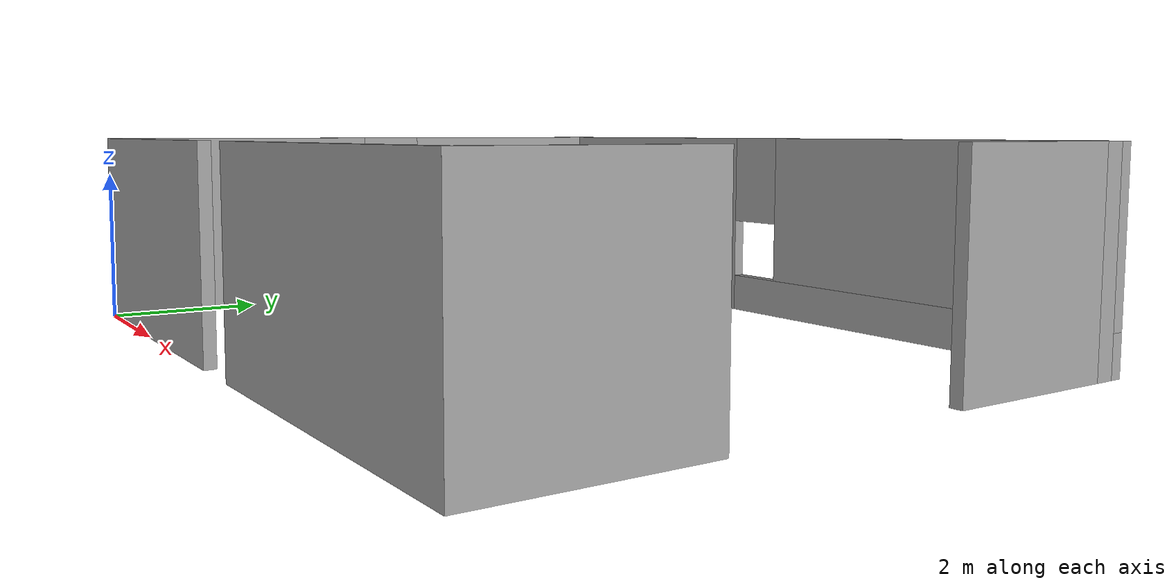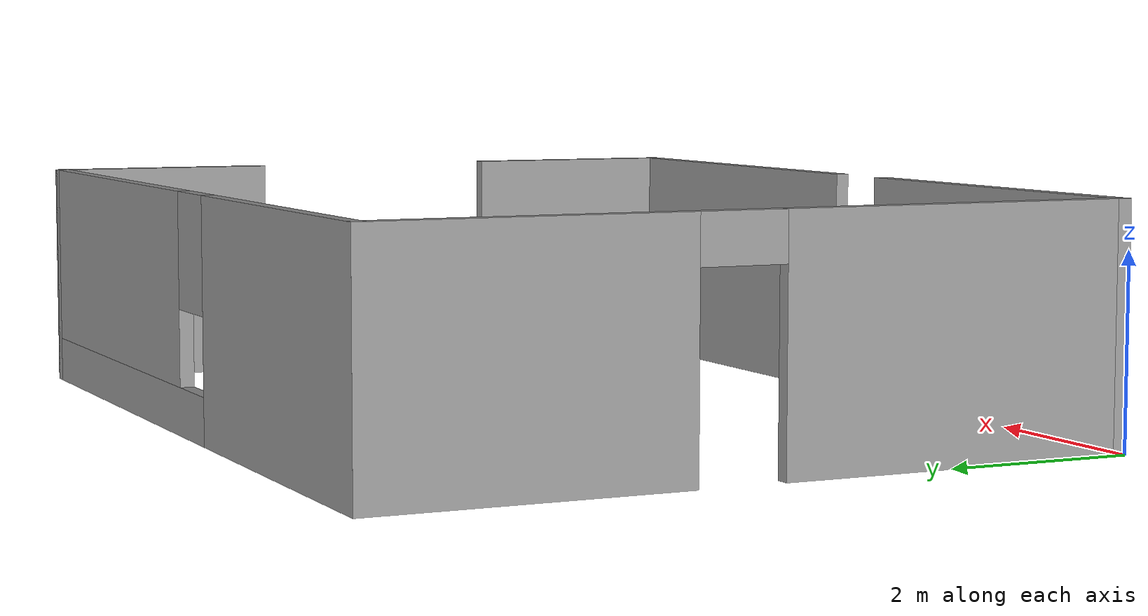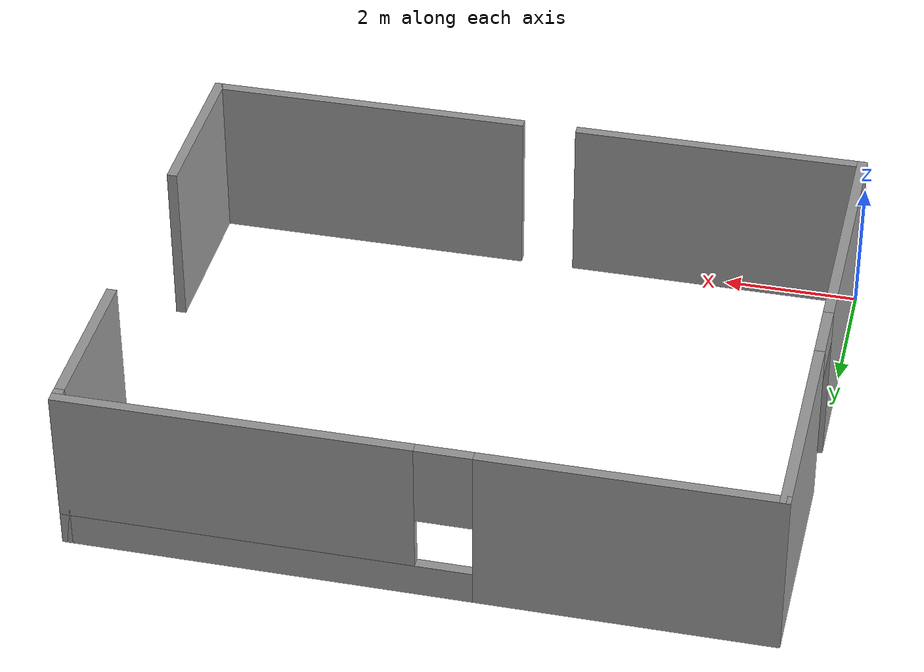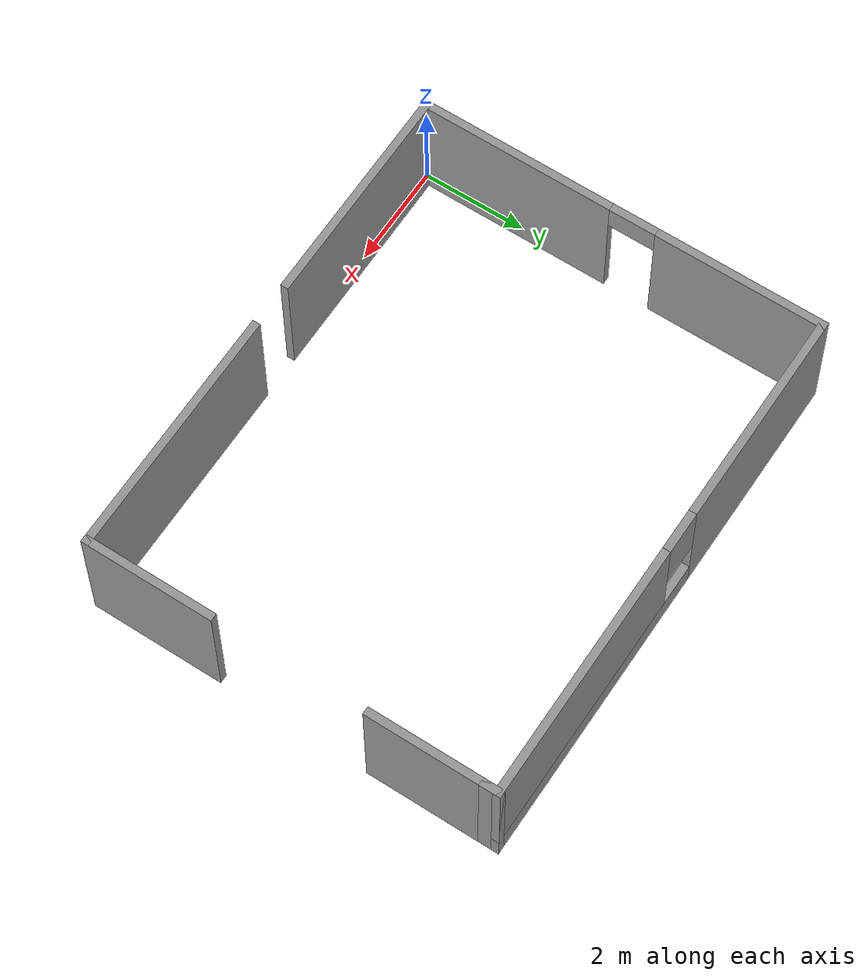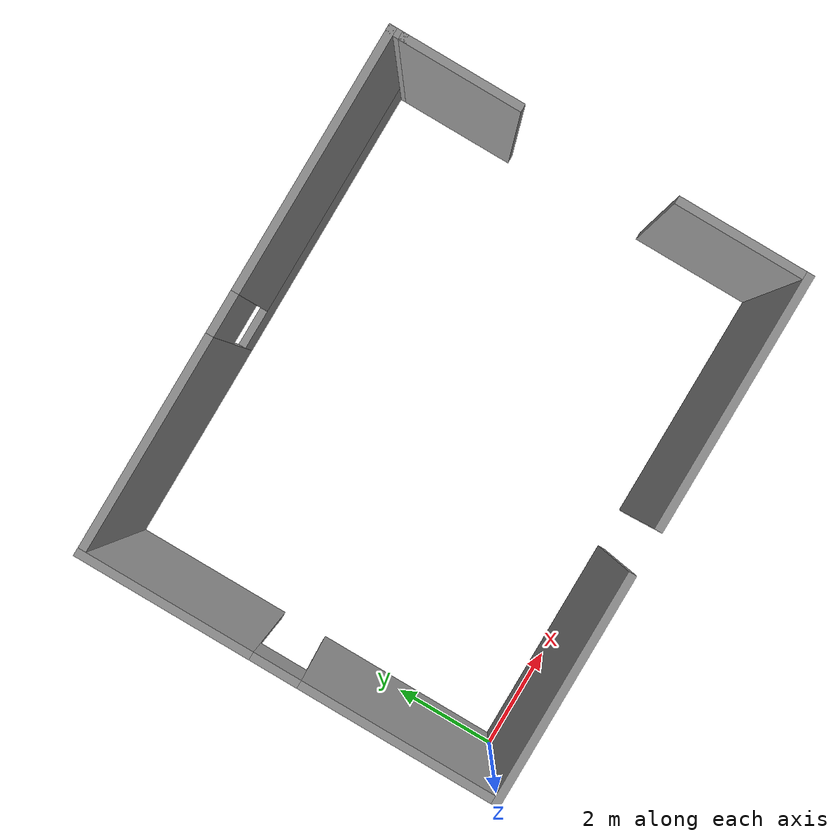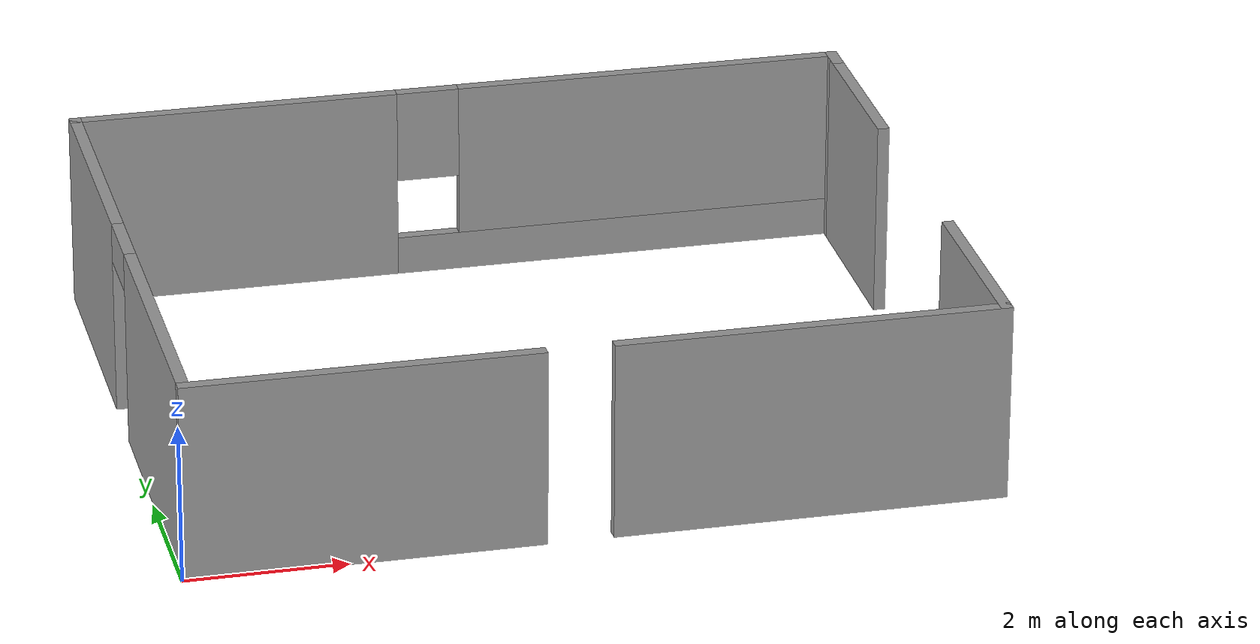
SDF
<?xml version='1.0'?>
<sdf version='1.6'>
  <model name='single_room_2windows_2doors'>
    <pose frame=''>5.00307 3.98307 0 0 -0 0</pose>
    <link name='Wall_2'>
      <pose frame=''>-7.4e-05 -3.92507 0 0 -0 0</pose>
      <visual name='Wall_2_Visual_0'>
        <pose frame=''>-2.81644 0 1.25 0 -0 0</pose>
        <geometry>
          <box>
            <size>4.36712 0.15 2.5</size>
          </box>
        </geometry>
        <material>
          <script>
            <uri>file://media/materials/scripts/gazebo.material</uri>
            <name>Gazebo/Grey</name>
          </script>
          <ambient>1 1 1 1</ambient>
        </material>
        <meta>
          <layer>0</layer>
        </meta>
      </visual>
      <collision name='Wall_2_Collision_0'>
        <geometry>
          <box>
            <size>4.36712 0.15 2.5</size>
          </box>
        </geometry>
        <pose frame=''>-2.81644 0 1.25 0 -0 0</pose>
      </collision>
      <visual name='Wall_2_Visual_1'>
        <pose frame=''>2.58356 0 1.25 0 -0 0</pose>
        <geometry>
          <box>
            <size>4.83288 0.15 2.5</size>
          </box>
        </geometry>
        <material>
          <script>
            <uri>file://media/materials/scripts/gazebo.material</uri>
            <name>Gazebo/Grey</name>
          </script>
          <ambient>1 1 1 1</ambient>
        </material>
        <meta>
          <layer>0</layer>
        </meta>
      </visual>
      <collision name='Wall_2_Collision_1'>
        <geometry>
          <box>
            <size>4.83288 0.15 2.5</size>
          </box>
        </geometry>
        <pose frame=''>2.58356 0 1.25 0 -0 0</pose>
      </collision>
    </link>
    <link name='Wall_3'>
      <pose frame=''>4.925 -0.125 0 0 -0 1.57078</pose>
      <visual name='Wall_3_Visual_0'>
        <pose frame=''>-2.59913 0 1.25 0 -0 0</pose>
        <geometry>
          <box>
            <size>2.55174 0.15 2.5</size>
          </box>
        </geometry>
        <material>
          <script>
            <uri>file://media/materials/scripts/gazebo.material</uri>
            <name>Gazebo/Grey</name>
          </script>
          <ambient>1 1 1 1</ambient>
        </material>
        <meta>
          <layer>0</layer>
        </meta>
      </visual>
      <collision name='Wall_3_Collision_0'>
        <geometry>
          <box>
            <size>2.55174 0.15 2.5</size>
          </box>
        </geometry>
        <pose frame=''>-2.59913 0 1.25 0 -0 0</pose>
      </collision>
      <visual name='Wall_3_Visual_1'>
        <pose frame=''>2.72037 0 1.25 0 -0 0</pose>
        <geometry>
          <box>
            <size>2.30926 0.15 2.5</size>
          </box>
        </geometry>
        <material>
          <script>
            <uri>file://media/materials/scripts/gazebo.material</uri>
            <name>Gazebo/Grey</name>
          </script>
          <ambient>1 1 1 1</ambient>
        </material>
        <meta>
          <layer>0</layer>
        </meta>
      </visual>
      <collision name='Wall_3_Collision_1'>
        <geometry>
          <box>
            <size>2.30926 0.15 2.5</size>
          </box>
        </geometry>
        <pose frame=''>2.72037 0 1.25 0 -0 0</pose>
      </collision>
    </link>
    <link name='Wall_5'>
      <pose frame=''>-4.925 0 0 0 -0 1.57078</pose>
      <visual name='Wall_5_Visual_0'>
        <pose frame=''>-2.09966 0 1.25 0 -0 0</pose>
        <geometry>
          <box>
            <size>3.80068 0.15 2.5</size>
          </box>
        </geometry>
        <material>
          <script>
            <uri>file://media/materials/scripts/gazebo.material</uri>
            <name>Gazebo/Grey</name>
          </script>
          <ambient>1 1 1 1</ambient>
        </material>
        <meta>
          <layer>0</layer>
        </meta>
      </visual>
      <collision name='Wall_5_Collision_0'>
        <geometry>
          <box>
            <size>3.80068 0.15 2.5</size>
          </box>
        </geometry>
        <pose frame=''>-2.09966 0 1.25 0 -0 0</pose>
      </collision>
      <visual name='Wall_5_Visual_1'>
        <pose frame=''>2.35034 0 1.25 0 -0 0</pose>
        <geometry>
          <box>
            <size>3.29932 0.15 2.5</size>
          </box>
        </geometry>
        <material>
          <script>
            <uri>file://media/materials/scripts/gazebo.material</uri>
            <name>Gazebo/Grey</name>
          </script>
          <ambient>1 1 1 1</ambient>
        </material>
        <meta>
          <layer>0</layer>
        </meta>
      </visual>
      <collision name='Wall_5_Collision_1'>
        <geometry>
          <box>
            <size>3.29932 0.15 2.5</size>
          </box>
        </geometry>
        <pose frame=''>2.35034 0 1.25 0 -0 0</pose>
      </collision>
      <visual name='Wall_5_Visual_2'>
        <pose frame=''>0.25068 0 2.25 0 -0 0</pose>
        <geometry>
          <box>
            <size>0.9 0.15 0.5</size>
          </box>
        </geometry>
        <material>
          <script>
            <uri>file://media/materials/scripts/gazebo.material</uri>
            <name>Gazebo/Grey</name>
          </script>
          <ambient>1 1 1 1</ambient>
        </material>
        <meta>
          <layer>0</layer>
        </meta>
      </visual>
      <collision name='Wall_5_Collision_2'>
        <geometry>
          <box>
            <size>0.9 0.15 0.5</size>
          </box>
        </geometry>
        <pose frame=''>0.25068 0 2.25 0 -0 0</pose>
      </collision>
    </link>
    <link name='Wall_6'>
      <pose frame=''>7.4e-05 3.92507 0 0 -0 0</pose>
      <visual name='Wall_6_Visual_0'>
        <pose frame=''>-2.90561 0 1.25 0 -0 0</pose>
        <geometry>
          <box>
            <size>4.18878 0.15 2.5</size>
          </box>
        </geometry>
        <material>
          <script>
            <uri>file://media/materials/scripts/gazebo.material</uri>
            <name>Gazebo/Grey</name>
          </script>
          <ambient>1 1 1 1</ambient>
        </material>
        <meta>
          <layer>0</layer>
        </meta>
      </visual>
      <collision name='Wall_6_Collision_0'>
        <geometry>
          <box>
            <size>4.18878 0.15 2.5</size>
          </box>
        </geometry>
        <pose frame=''>-2.90561 0 1.25 0 -0 0</pose>
      </collision>
      <visual name='Wall_6_Visual_1'>
        <pose frame=''>2.09439 0 0.25 0 -0 0</pose>
        <geometry>
          <box>
            <size>5.81122 0.15 0.5</size>
          </box>
        </geometry>
        <material>
          <script>
            <uri>file://media/materials/scripts/gazebo.material</uri>
            <name>Gazebo/Grey</name>
          </script>
          <ambient>1 1 1 1</ambient>
        </material>
        <meta>
          <layer>0</layer>
        </meta>
      </visual>
      <collision name='Wall_6_Collision_1'>
        <geometry>
          <box>
            <size>5.81122 0.15 0.5</size>
          </box>
        </geometry>
        <pose frame=''>2.09439 0 0.25 0 -0 0</pose>
      </collision>
      <visual name='Wall_6_Visual_2'>
        <pose frame=''>2.49439 0 1.5 0 -0 0</pose>
        <geometry>
          <box>
            <size>5.01122 0.15 2</size>
          </box>
        </geometry>
        <material>
          <script>
            <uri>file://media/materials/scripts/gazebo.material</uri>
            <name>Gazebo/Grey</name>
          </script>
          <ambient>1 1 1 1</ambient>
        </material>
        <meta>
          <layer>0</layer>
        </meta>
      </visual>
      <collision name='Wall_6_Collision_2'>
        <geometry>
          <box>
            <size>5.01122 0.15 2</size>
          </box>
        </geometry>
        <pose frame=''>2.49439 0 1.5 0 -0 0</pose>
      </collision>
      <visual name='Wall_6_Visual_3'>
        <pose frame=''>-0.411219 0 1.9 0 -0 0</pose>
        <geometry>
          <box>
            <size>0.8 0.15 1.2</size>
          </box>
        </geometry>
        <material>
          <script>
            <uri>file://media/materials/scripts/gazebo.material</uri>
            <name>Gazebo/Grey</name>
          </script>
          <ambient>1 1 1 1</ambient>
        </material>
        <meta>
          <layer>0</layer>
        </meta>
      </visual>
      <collision name='Wall_6_Collision_3'>
        <geometry>
          <box>
            <size>0.8 0.15 1.2</size>
          </box>
        </geometry>
        <pose frame=''>-0.411219 0 1.9 0 -0 0</pose>
      </collision>
    </link>
    <link name='Wall_7'>
      <collision name='Wall_7_Collision'>
        <geometry>
          <box>
            <size>0.4 0.15 2.5</size>
          </box>
        </geometry>
        <pose frame=''>0 0 1.25 0 -0 0</pose>
      </collision>
      <visual name='Wall_7_Visual'>
        <pose frame=''>0 0 1.25 0 -0 0</pose>
        <geometry>
          <box>
            <size>0.4 0.15 2.5</size>
          </box>
        </geometry>
        <material>
          <script>
            <uri>file://media/materials/scripts/gazebo.material</uri>
            <name>Gazebo/Grey</name>
          </script>
          <ambient>1 1 1 1</ambient>
        </material>
        <meta>
          <layer>0</layer>
        </meta>
      </visual>
      <pose frame=''>4.92507 3.80007 0 0 0 -1.5708</pose>
    </link>
    <static>1</static>
  </model>
</sdf>
